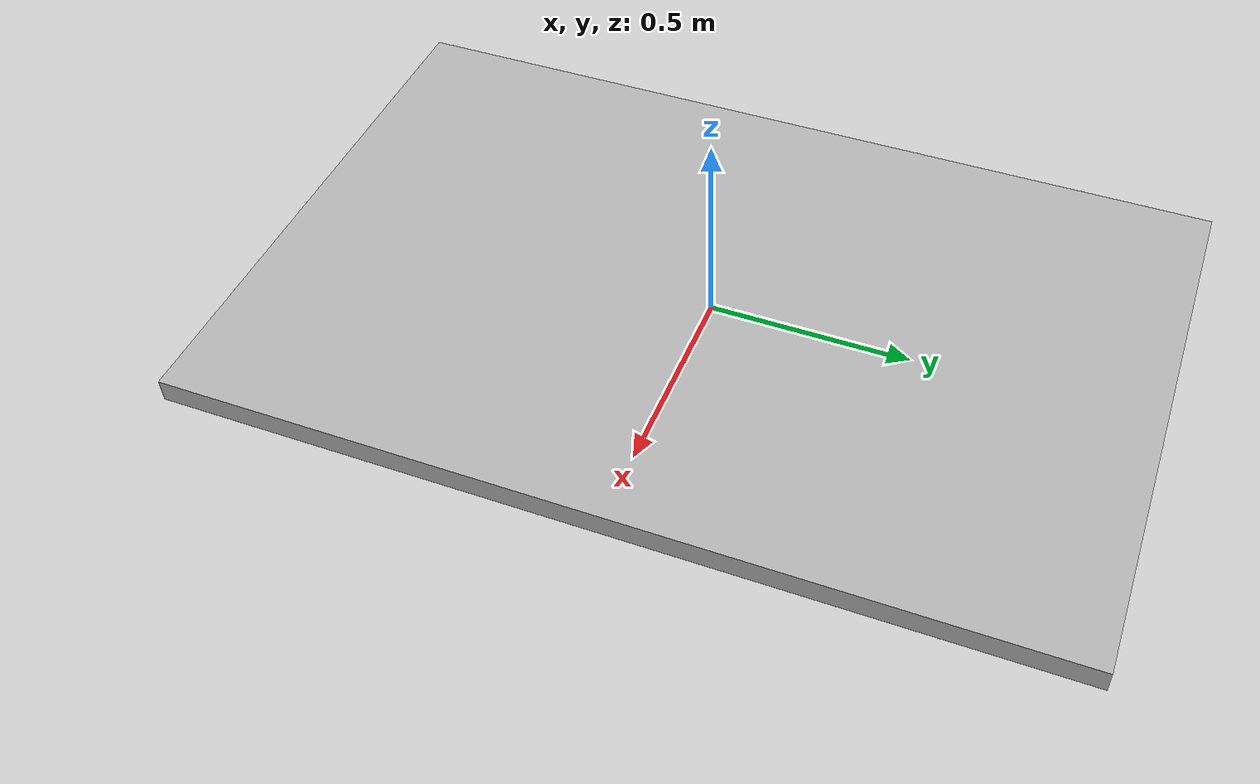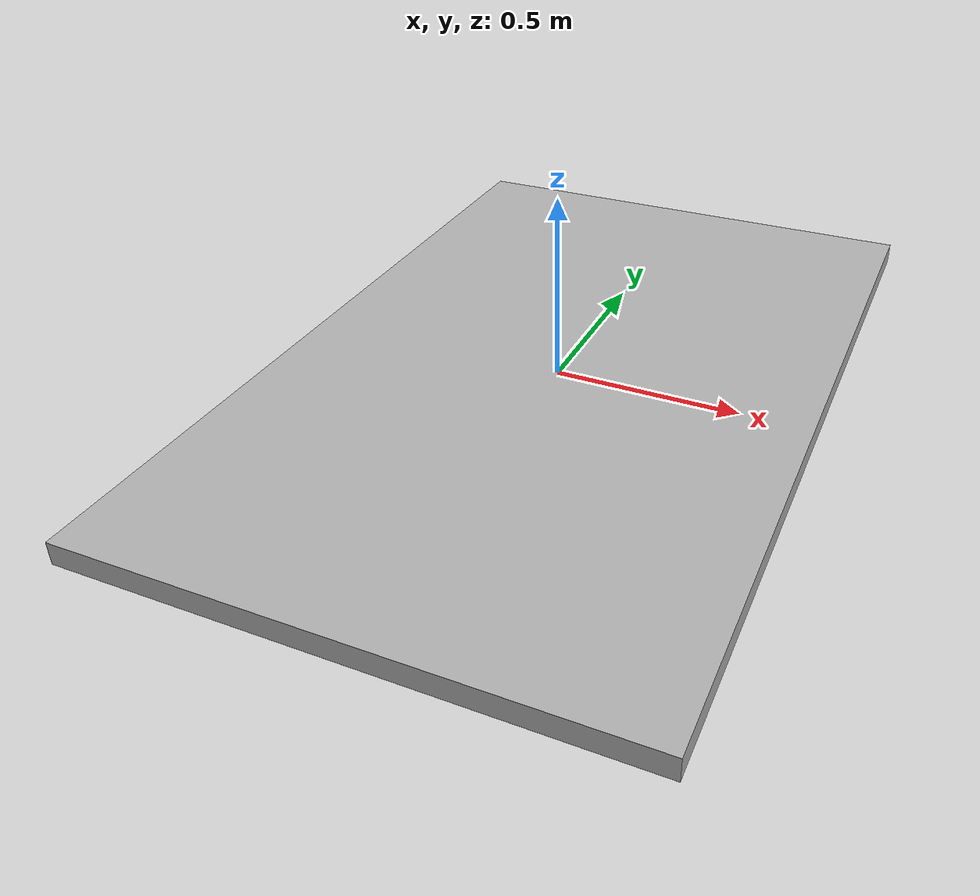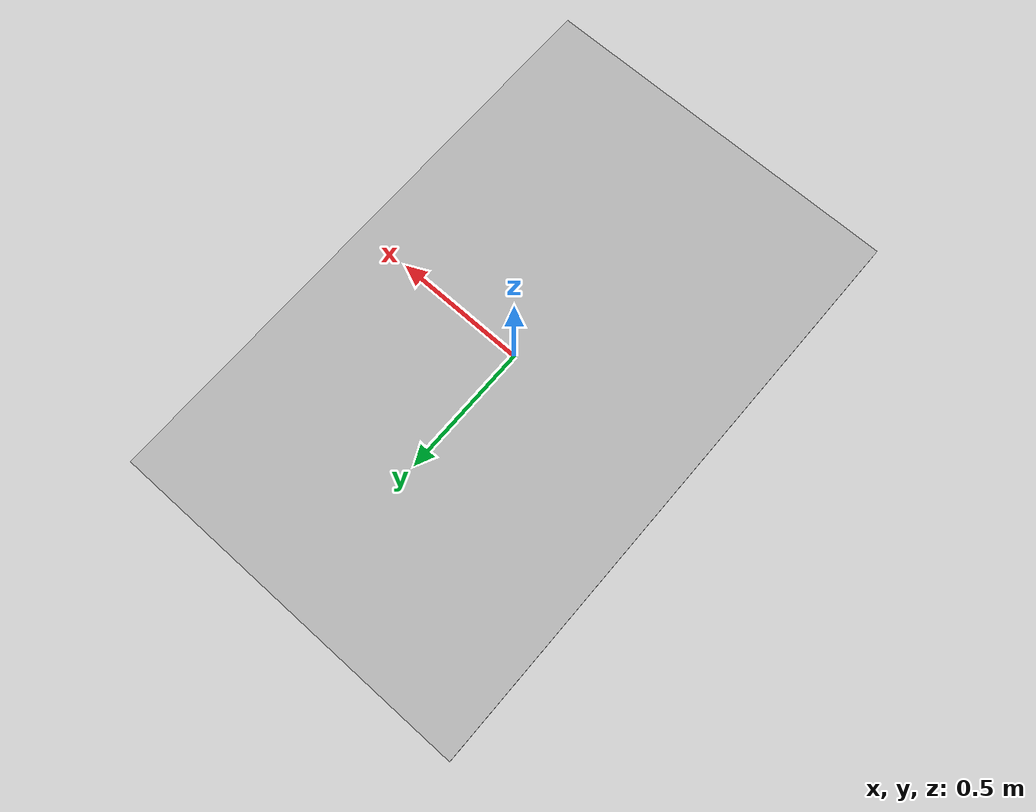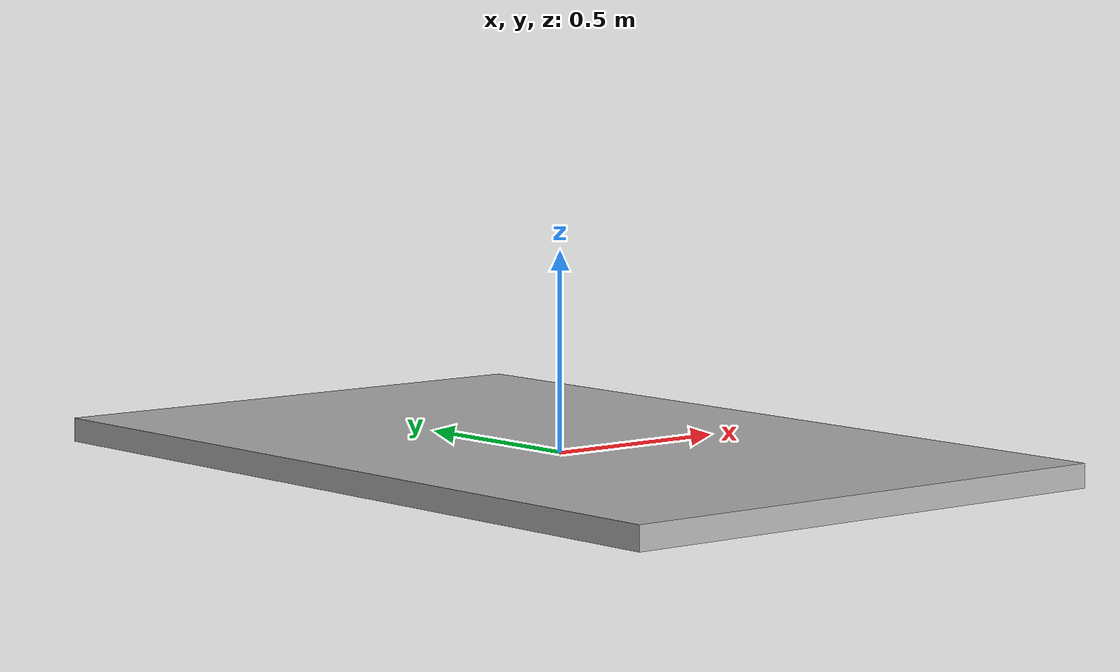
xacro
<?xml version="1.0"?>
<robot xmlns:xacro="http://wiki.ros.org/xacro" name="my_demo_robot">

  <!-- Root frame for the complete scene. -->
  <!-- All static environment objects are attached to this link. -->
  <link name="world" />

  <!-- Material used for the large base plate (table-like support). -->
  <material name="LightGrey">
      <color rgba="0.7 0.7 0.7 1.0" />
  </material>

  <!-- Reserved material for optional blue visual elements. -->
  <material name="blue">
      <color rgba="0 0 0.8 1" />
  </material>

  <!-- Material used for the smaller robot mounting plate. -->
  <material name="red">
      <color rgba="0.8 0 0 1" />
  </material>

  <link name="baseplate_link">
    <!-- Visual appearance of the base plate. -->
    <visual>
      <origin xyz="0 0 0.0" />
      <geometry>
        <box size="1.4 2.2 0.06" />
      </geometry>
      <material name="LightGrey"/>
    </visual>
  </link>

  <joint name="baseplate_joint" type="fixed">
    <origin xyz="0 0 0.003" />
    <parent link="world" />
    <child link="baseplate_link" />
  </joint>

  <!-- Start demo code here-->
</robot>
